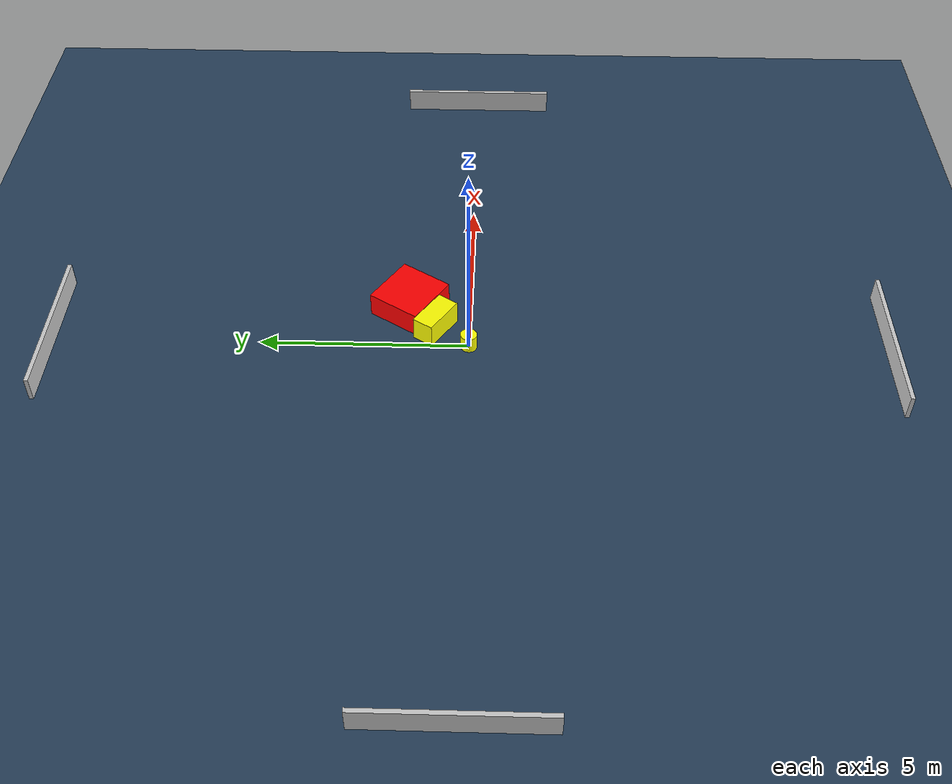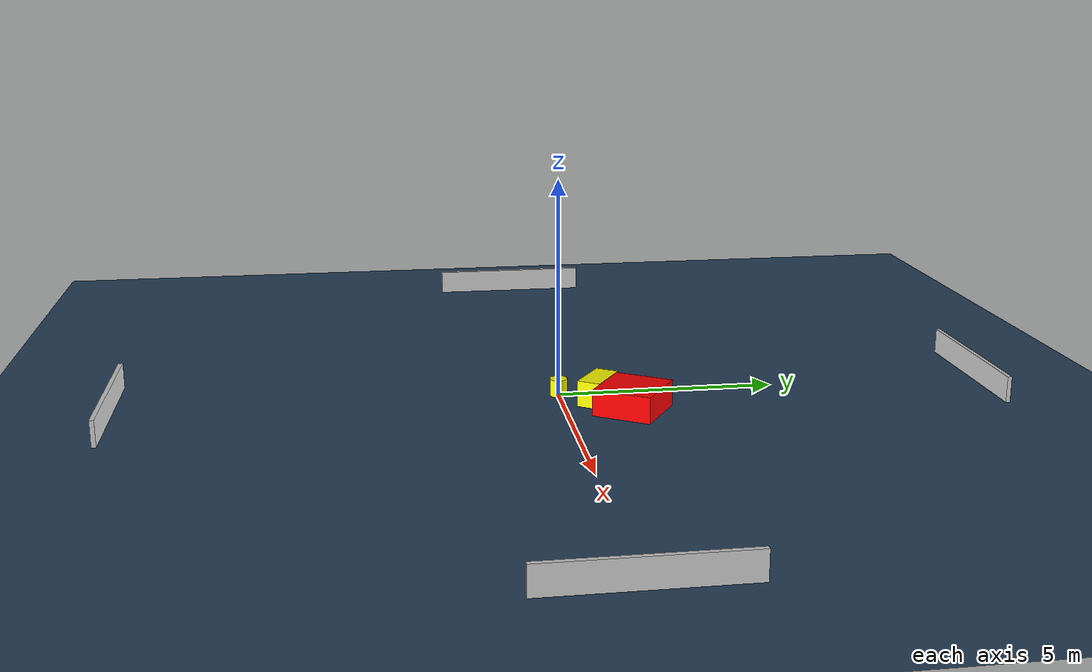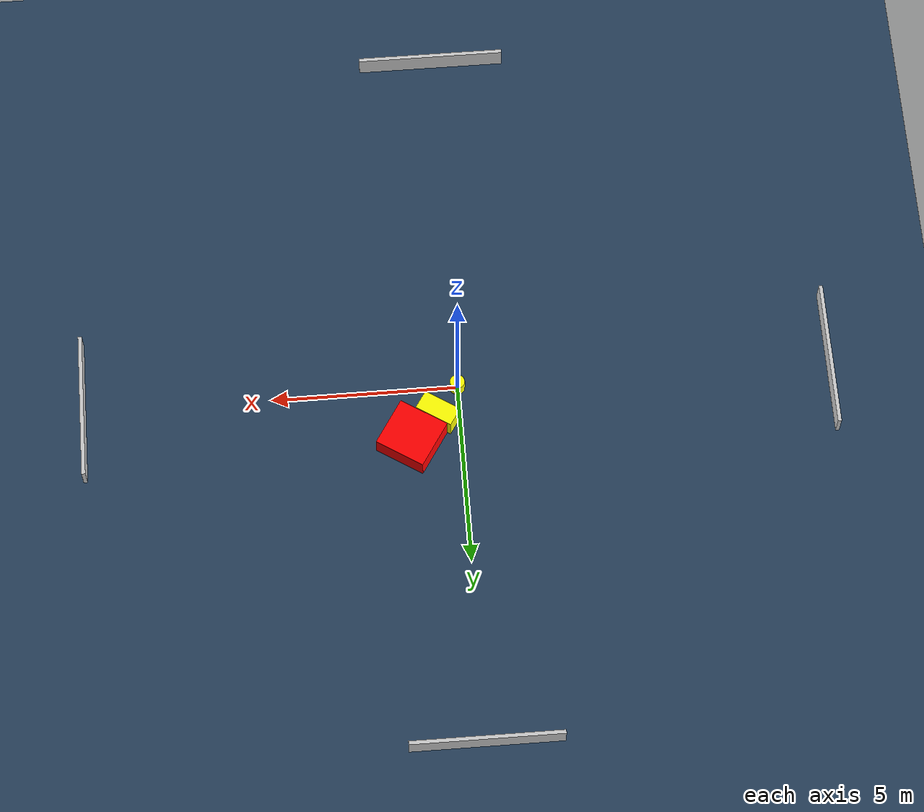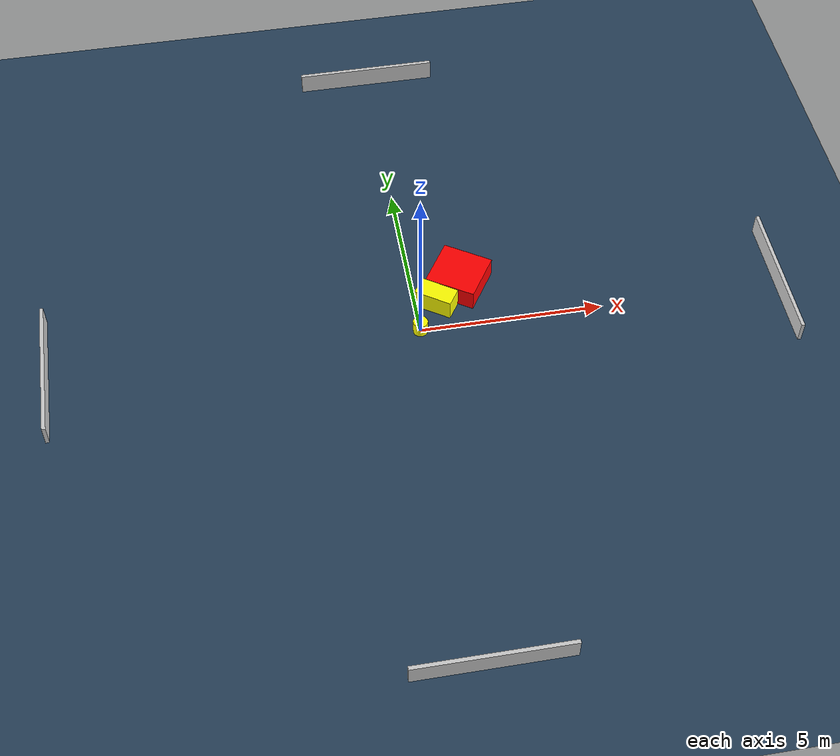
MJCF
<?xml version="1.0" ?>
<mujoco model="generated_environment">
  <option timestep="0.01" integrator="RK4" cone="elliptic"/>
  <default>
    <geom density="1"/>
  </default>
  <asset>
    <texture builtin="gradient" height="3072" name="skybox" rgb1="0.3 0.5 0.7" rgb2="0 0 0" type="skybox" width="512"/>
    <texture builtin="checker" height="300" name="groundplane" rgb1="0.2 0.3 0.4" rgb2="0.1 0.2 0.3" type="2d" width="300"/>
    <material name="groundplane" reflectance="0.2" texrepeat="5 5" texture="groundplane"/>
  </asset>
  <worldbody>
    <light dir="0 0 -1" directional="true" pos="0 0 1.5"/>
    <geom condim="3" friction="0.5 0.005 0.001" material="groundplane" name="floor" pos="0 0 0" size="0 0 0.05" type="plane"/>
    <body name="walls">
      <geom name="wall_1" condim="4" pos="-10.0 0.0 0.3" rgba="0.800000011920929 0.800000011920929 0.800000011920929 1.0" size="0.05 2.0 0.3" type="box"/>
      <geom name="wall_2" condim="4" pos="10.0 0.0 0.3" rgba="0.800000011920929 0.800000011920929 0.800000011920929 1.0" size="0.05 2.0 0.3" type="box"/>
      <geom name="wall_3" condim="4" pos="0.0 -10.0 0.3" rgba="0.800000011920929 0.800000011920929 0.800000011920929 1.0" size="2.0 0.05 0.3" type="box"/>
      <geom name="wall_4" condim="4" pos="0.0 10.0 0.3" rgba="0.800000011920929 0.800000011920929 0.800000011920929 1.0" size="2.0 0.05 0.3" type="box"/>
    </body>
    <body name="robot">
      <joint name="joint_x" type="slide" pos="0 0 0" axis="1 0 0"/>
      <joint name="joint_y" type="slide" pos="0 0 0" axis="0 1 0"/>
      <geom name="robot" type="cylinder" pos="0.0 0.0 0.2" size="0.2 0.2 0.0" mass="5.0" friction="1.0 0.005 0.0001" condim="4" rgba="1.0 1.0 0.0 1.0"/>
    </body>
    <body name="obstacle_1_movable">
      <geom name="obstacle_1_movable" condim="4" pos="0.5738046986282679 0.8183849777651355 0.3" euler="0 0 146.46959213350127" friction="0.0 0.005 0.001" rgba="1.0 1.0 0.0 1.0" size="0.5285079142510973 0.26638817017040295 0.3" type="box" mass="0.1"/>
      <joint type="free"/>
    </body>
    <body name="obstacle_2_static">
      <geom name="obstacle_2_static" condim="4" pos="1.3201056807394056 1.4751643639918512 0.3" euler="0 0 147.21218532270726" friction="0.0 0.005 0.001" rgba="1.0 0.0 0.0 1.0" size="0.7009231370195181 0.6769731591876315 0.3" type="box"/>
    </body>
  </worldbody>
  <actuator>
    <motor name="actuator_x" joint="joint_x" gear="1" ctrlrange="-1 1"/>
    <motor name="actuator_y" joint="joint_y" gear="1" ctrlrange="-1 1"/>
  </actuator>
</mujoco>
